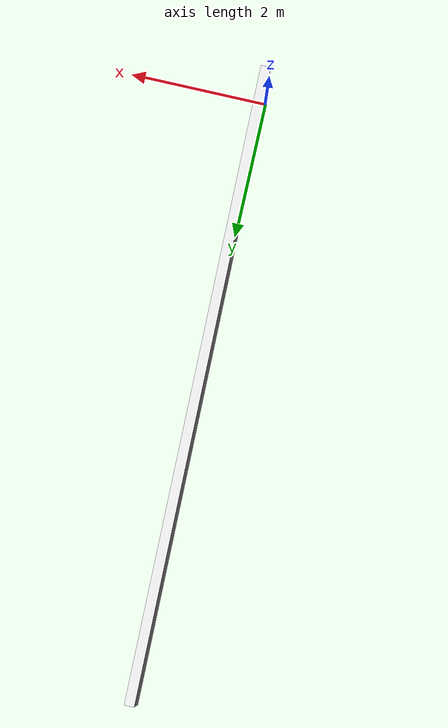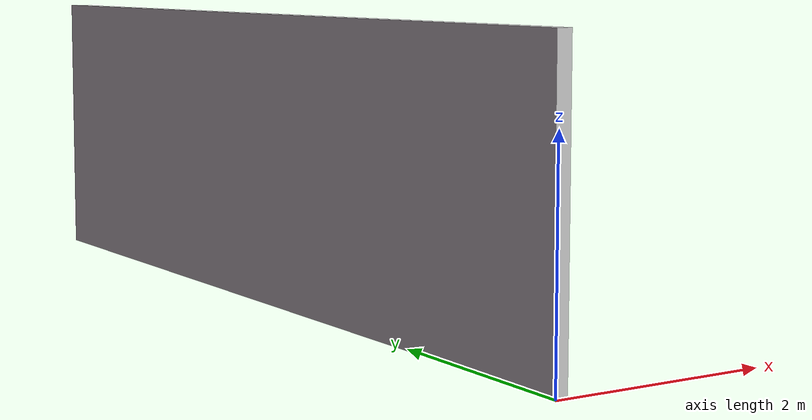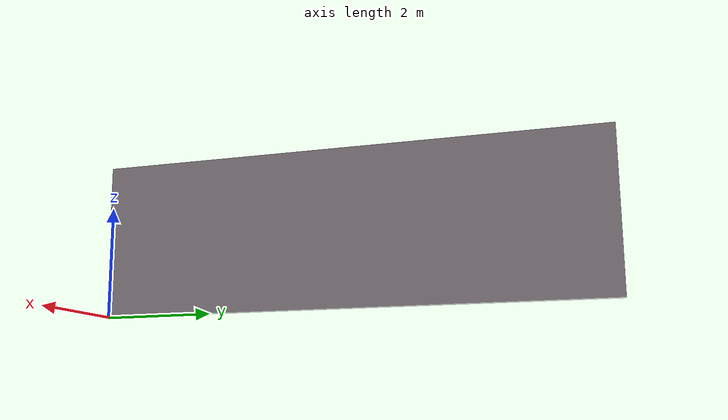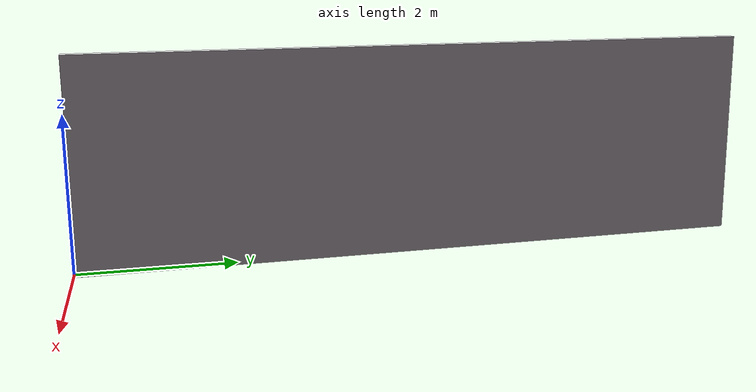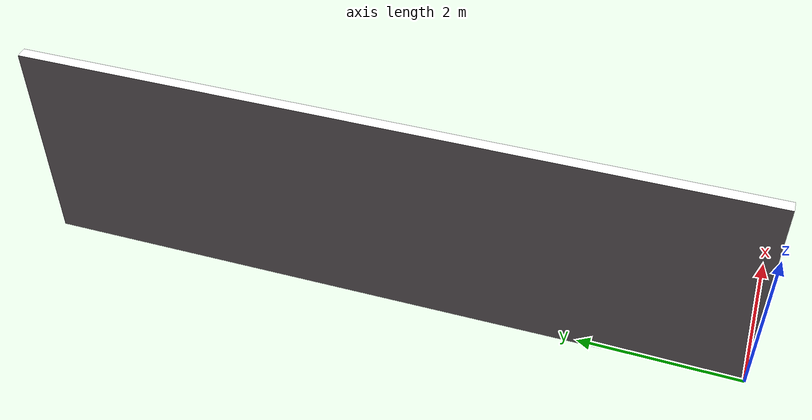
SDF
<?xml version="1.0" ?>

<sdf version="1.4">
    <model name="wall">
        <static> true </static>
        <link name="wall_link">
            <collision name="wall_collision">
                <geometry>
                    <box>
                        <size> 3.28 0.9 0. </size>
                    </box>
                </geometry>
            </collision>
            <visual name="wall_mesh">
                <cast_shadows> true </cast_shadows>
                <geometry>
                    <mesh>
                        <uri>model://wall/wall.dae</uri>
                    </mesh>
                </geometry>
            </visual>
        </link>
    </model>
</sdf>
